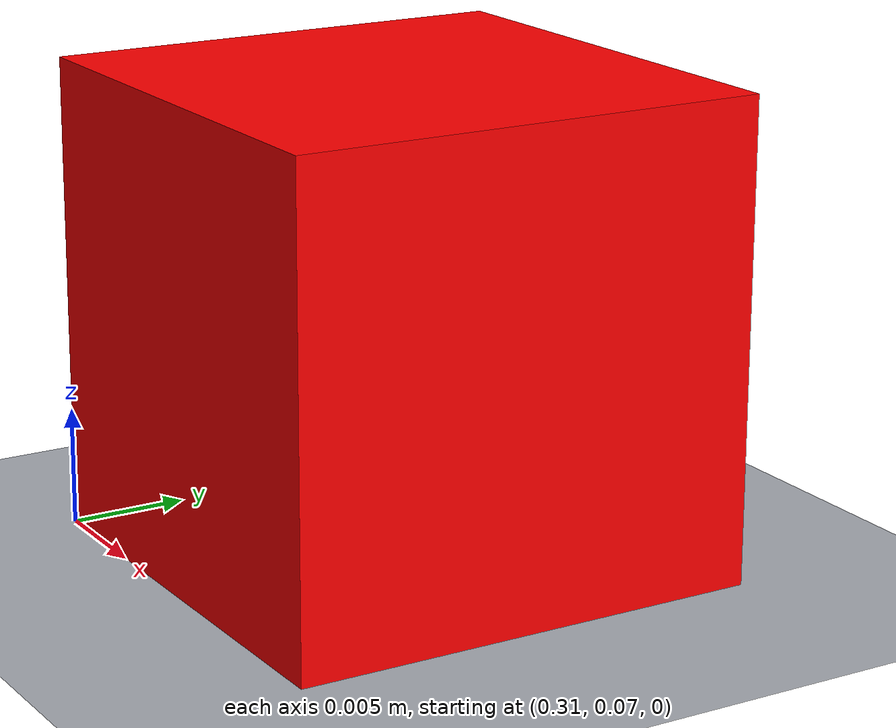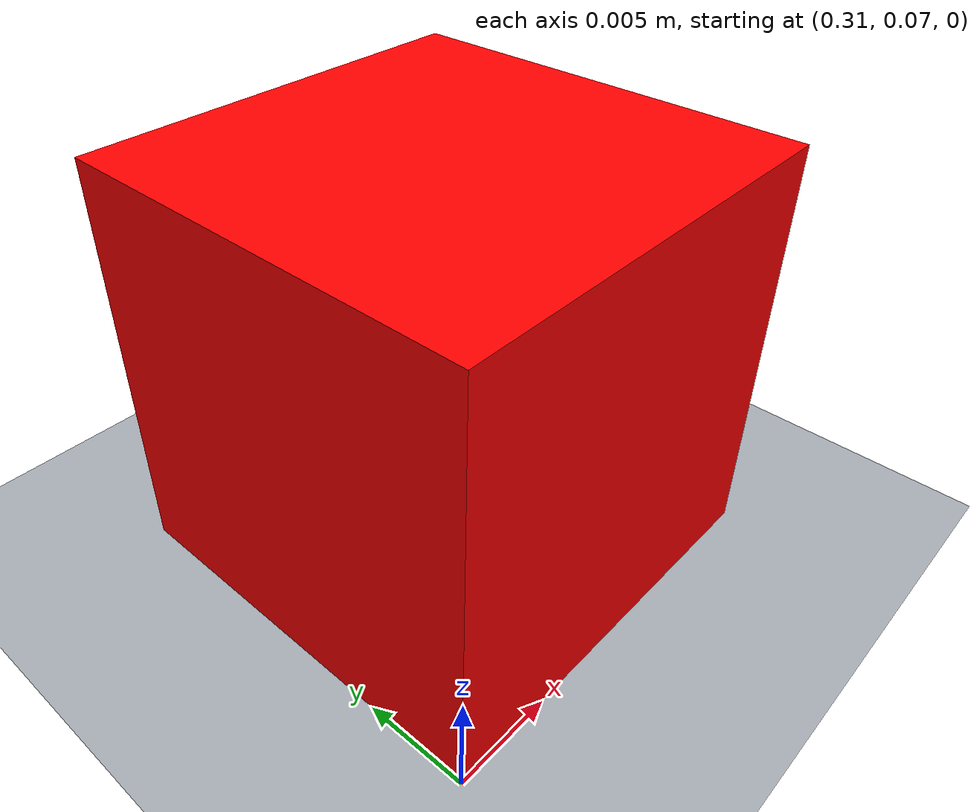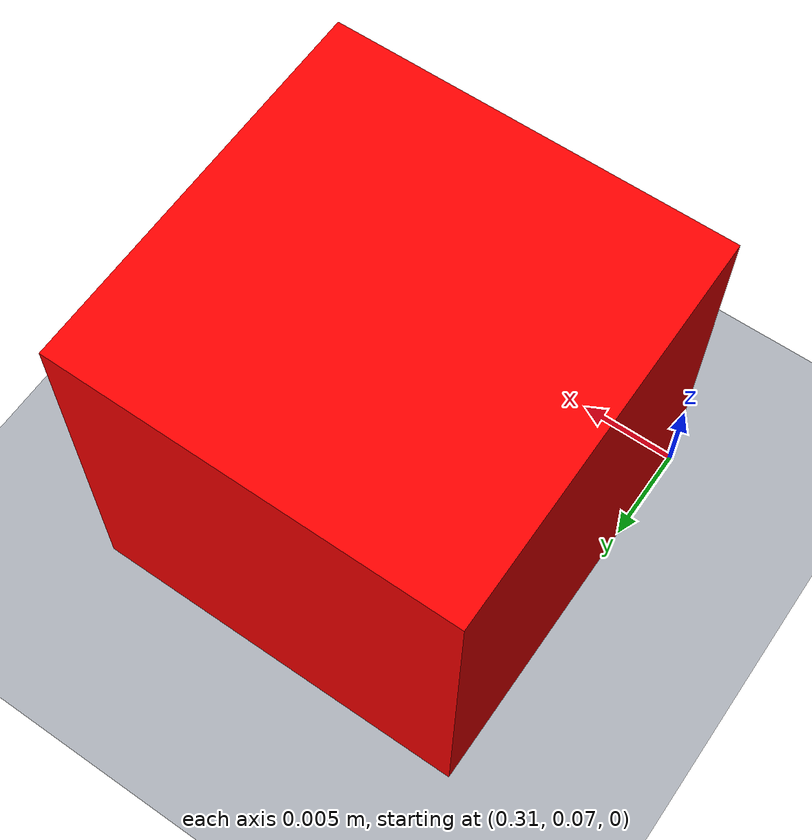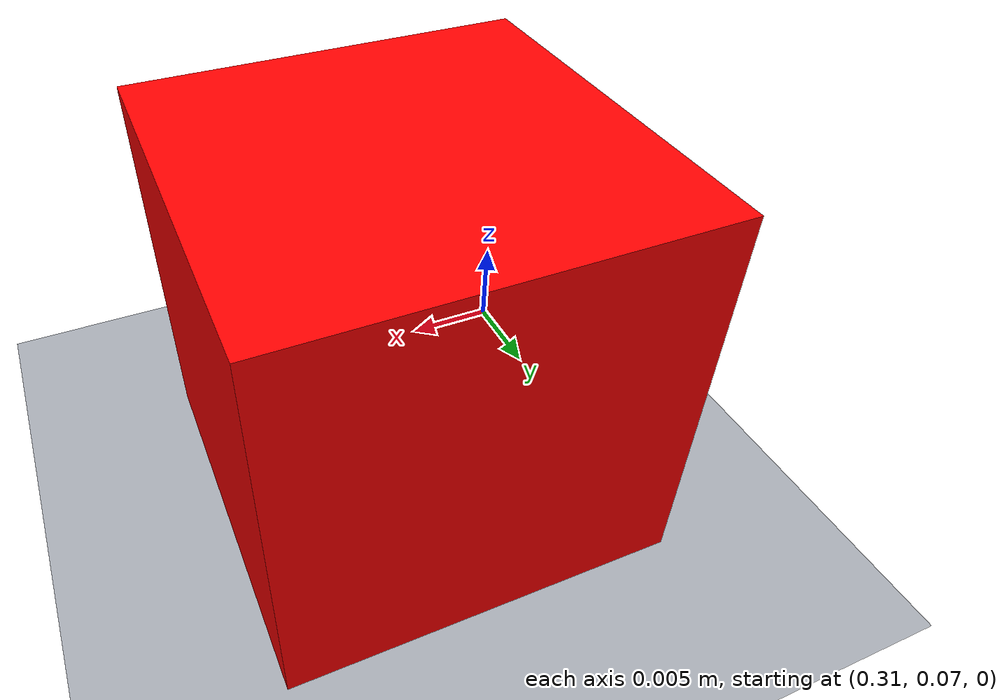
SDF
<?xml version="1.0"?>
<sdf version="1.8">
  <world name="empty">
    <physics name="5ms" type="ignored">
      <max_step_size>0.005</max_step_size>
      <real_time_factor>1.0</real_time_factor>
    </physics>
    <plugin filename="ignition-gazebo-physics-system" name="gz::sim::systems::Physics"/>
    <plugin filename="ignition-gazebo-sensors-system" name="gz::sim::systems::Sensors">
      <render_engine>ogre2</render_engine>
    </plugin>
    <plugin filename="ignition-gazebo-user-commands-system" name="gz::sim::systems::UserCommands"/>
    <plugin filename="ignition-gazebo-scene-broadcaster-system" name="gz::sim::systems::SceneBroadcaster"/>

    <light type="directional" name="sun">
      <cast_shadows>false</cast_shadows>
      <pose>0 0 10 0 0 0</pose>
      <diffuse>0.8 0.8 0.8 1</diffuse>
      <specular>0.2 0.2 0.2 1</specular>
      <direction>-0.5 0.1 -0.9</direction>
    </light>

    <model name="ground_plane">
      <static>true</static>
      <link name="link">
        <collision name="collision">
          <geometry>
            <plane><normal>0 0 1</normal><size>100 100</size></plane>
          </geometry>
        </collision>
        <visual name="visual">
          <geometry>
            <plane><normal>0 0 1</normal><size>100 100</size></plane>
          </geometry>
          <material>
            <ambient>0.65 0.67 0.70 1</ambient>
            <diffuse>0.65 0.67 0.70 1</diffuse>
          </material>
        </visual>
      </link>
    </model>

    <model name="target_cube">
      <static>false</static>
      <pose>0.32 0.08 0.01 0 0 0</pose>
      <link name="link">
        <inertial>
          <mass>0.0032</mass>
          <inertia>
            <ixx>0.0000002133</ixx><iyy>0.0000002133</iyy><izz>0.0000002133</izz>
          </inertia>
        </inertial>
        <collision name="collision">
          <geometry>
            <box>
              <size>0.02 0.02 0.02</size>
            </box>
          </geometry>
          <surface>
            <friction><ode><mu>1.2</mu><mu2>1.2</mu2></ode></friction>
          </surface>
        </collision>
        <visual name="visual">
          <geometry>
            <box>
              <size>0.02 0.02 0.02</size>
            </box>
          </geometry>
          <material>
            <ambient>1 0 0 1</ambient>
            <diffuse>1 0 0 1</diffuse>
          </material>
        </visual>
      </link>
    </model>

  </world>
</sdf>
